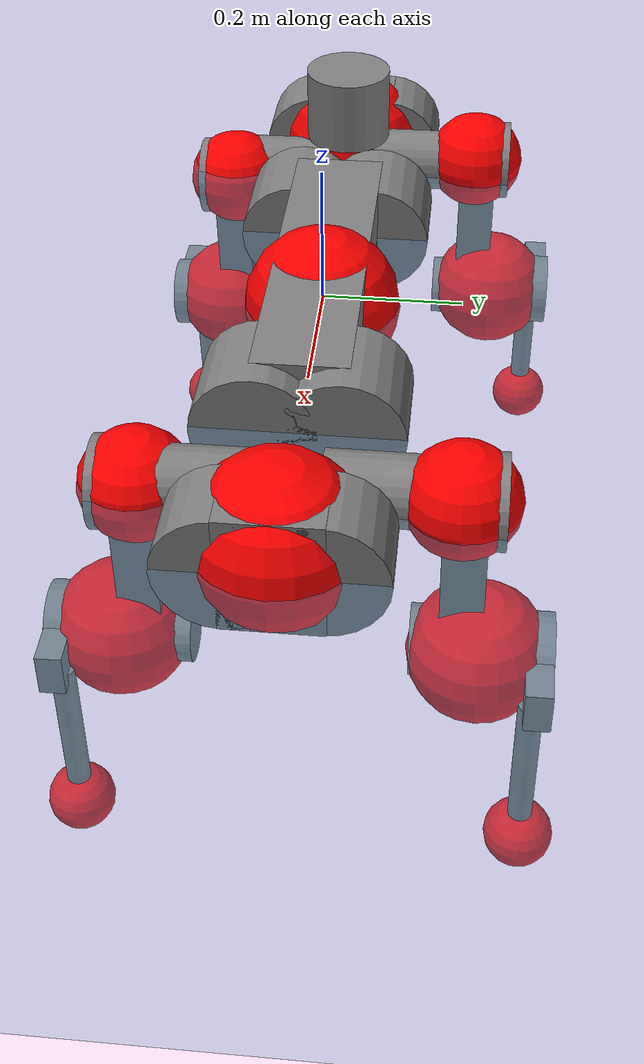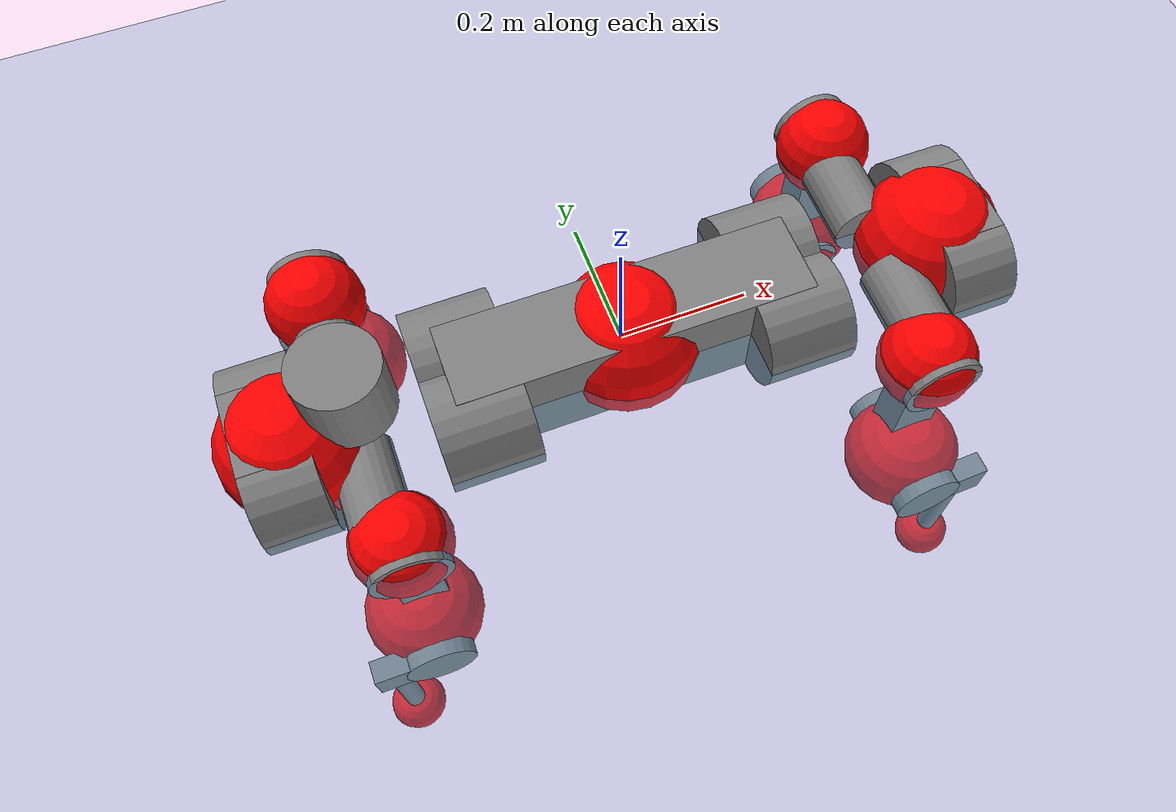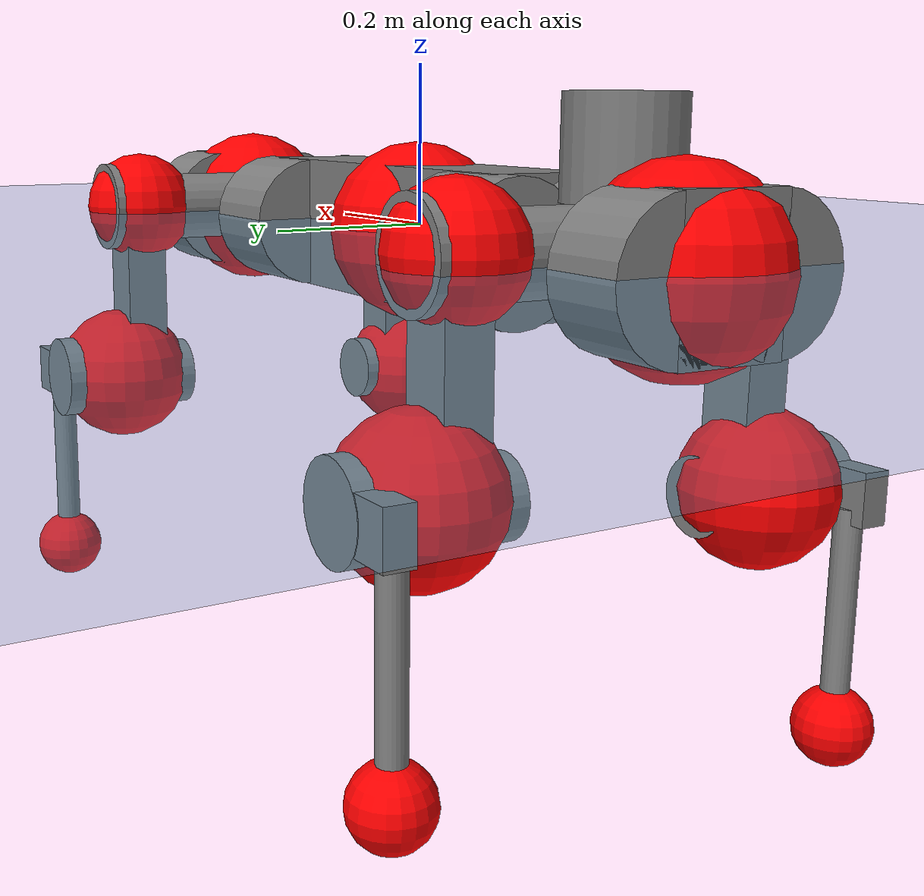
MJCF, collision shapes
<mujoco model="anymal_c">
  <compiler angle="radian" assetdir="assets" balanceinertia="true" inertiafromgeom="false"/>

  <option timestep="0.005" density="1.2" viscosity="2e-05"/>

  <size nkey="1"/>

  <visual>
    <quality shadowsize="8192"/>
    <map shadowclip="0.5"/>
  </visual>

  <default>
    <default class="/">
      <material specular="0" shininess="0.25"/>
      <geom contype="0" conaffinity="0" group="1" solref="-1000 -80"/>
      <site size="0.01 0.005 0.005" group="5"/>
      <general forcelimited="true" forcerange="-80 80" biastype="affine" gainprm="80" biasprm="0 -80 -2"/>
      <default class="anymal_c">
        <joint armature="0.01" damping="0.01" frictionloss="0.1"/>
        <default class="visual">
          <geom type="mesh" group="2"/>
          <default class="visual_zflip"/>
        </default>
        <default class="collision">
          <geom type="cylinder" group="3"/>
          <default class="foot">
            <geom size="0.03 0 0" type="sphere" condim="6" priority="1" friction="0.8 0.02 0.01" solimp="0.015 1 0.03"/>
          </default>
        </default>
      </default>
      <default class="reward_collision_sphere">
        <geom group="5" rgba="1 0 0 1"/>
      </default>
    </default>
  </default>

  <asset>
    <texture type="skybox" colorspace="auto" name="//unnamed_texture_0" builtin="gradient" rgb1="0.95 0.95 0.95" rgb2="0.95 0.95 0.95" width="100" height="600"/>
    <texture type="2d" colorspace="auto" name="texplane" builtin="checker" rgb1="0.345 0.575 0.748" rgb2="0.345 0.575 0.748" markrgb="1 1 1" width="512" height="512"/>
    <texture type="2d" colorspace="linear" name="base" file="base.png"/>
    <texture type="2d" colorspace="linear" name="top_shell" file="top_shell.png"/>
    <texture type="2d" colorspace="linear" name="bottom_shell" file="bottom_shell.png"/>
    <texture type="2d" colorspace="linear" name="remote" file="remote.png"/>
    <texture type="2d" colorspace="linear" name="hatch" file="hatch.png"/>
    <texture type="2d" colorspace="linear" name="handle" file="handle.png"/>
    <texture type="2d" colorspace="linear" name="face" file="face.png"/>
    <texture type="2d" colorspace="linear" name="battery" file="battery.png"/>
    <texture type="2d" colorspace="linear" name="lidar_cage" file="lidar_cage.png"/>
    <texture type="2d" colorspace="linear" name="depth_camera" file="depth_camera.png"/>
    <texture type="2d" colorspace="linear" name="wide_angle_camera" file="wide_angle_camera.png"/>
    <texture type="2d" colorspace="linear" name="lidar" file="lidar.png"/>
    <texture type="2d" colorspace="linear" name="drive" file="drive.png"/>
    <texture type="2d" colorspace="linear" name="hip_l" file="hip_l.png"/>
    <texture type="2d" colorspace="linear" name="shank_l" file="shank_l.png"/>
    <texture type="2d" colorspace="linear" name="foot" file="foot.png"/>
    <texture type="2d" colorspace="linear" name="thigh" file="thigh.png"/>
    <texture type="2d" colorspace="linear" name="shank_r" file="shank_r.png"/>
    <texture type="2d" colorspace="linear" name="hip_r" file="hip_r.png"/>
    <material name="MatPlane" class="/" texture="texplane" texuniform="true" texrepeat="2 2" specular="0.9" shininess="0.5"/>
    <material name="black_plastic" class="/" rgba="0.007 0.007 0.007 1"/>
    <material name="green" class="/" rgba="0.052 0.178 0.033 1"/>
    <material name="red" class="/" rgba="0.178 0.006 0.005 1"/>
    <material name="yellow" class="/" rgba="0.178 0.119 0.006 1"/>
    <material name="lwl" class="/" rgba="0.8 0.8 0.8 1"/>
    <material name="base" class="/" texture="base"/>
    <material name="top_shell" class="/" texture="top_shell"/>
    <material name="bottom_shell" class="/" texture="bottom_shell"/>
    <material name="hip_l" class="/" texture="hip_l"/>
    <material name="thigh" class="/" texture="thigh"/>
    <material name="shank_l" class="/" texture="shank_l"/>
    <material name="foot" class="/" texture="foot"/>
    <material name="hip_r" class="/" texture="hip_r"/>
    <material name="shank" class="/" texture="shank_r"/>
    <material name="hatch" class="/" texture="hatch"/>
    <material name="remote" class="/" texture="remote"/>
    <material name="handle" class="/" texture="handle"/>
    <material name="face" class="/" texture="face"/>
    <material name="depth_camera" class="/" texture="depth_camera"/>
    <material name="wide_angle_camera" class="/" texture="wide_angle_camera"/>
    <material name="battery" class="/" texture="battery"/>
    <material name="lidar_cage" class="/" texture="lidar_cage"/>
    <material name="lidar" class="/" texture="lidar"/>
    <material name="drive" class="/" texture="drive"/>
    <mesh name="base_0" class="/" file="base_0.obj"/>
    <mesh name="base_1" class="/" file="base_1.obj"/>
    <mesh name="base_2" class="/" file="base_2.obj"/>
    <mesh name="base_3" class="/" file="base_3.obj"/>
    <mesh name="base_4" class="/" file="base_4.obj"/>
    <mesh name="base_5" class="/" file="base_5.obj"/>
    <mesh name="top_shell" class="/" file="top_shell.obj"/>
    <mesh name="bottom_shell" class="/" file="bottom_shell.obj"/>
    <mesh name="remote" class="/" file="remote.obj"/>
    <mesh name="handle" class="/" file="handle.obj"/>
    <mesh name="face" class="/" file="face.obj"/>
    <mesh name="wide_angle_camera" class="/" file="wide_angle_camera.obj"/>
    <mesh name="depth_camera" class="/" file="depth_camera.obj"/>
    <mesh name="battery" class="/" file="battery.obj"/>
    <mesh name="lidar_cage" class="/" file="lidar_cage.obj"/>
    <mesh name="lidar" class="/" file="lidar.obj"/>
    <mesh name="drive" class="/" file="drive.obj"/>
    <mesh name="hip_l" class="/" file="hip_l.obj"/>
    <mesh name="thigh" class="/" file="thigh.obj"/>
    <mesh name="shank_l" class="/" file="shank_l.obj"/>
    <mesh name="foot" class="/" file="foot.obj"/>
    <mesh name="hip_r" class="/" file="hip_r.obj"/>
    <mesh name="hatch" class="/" file="hatch.obj"/>
    <mesh name="shank_r" class="/" file="shank_r.obj"/>
  </asset>

  <worldbody>
    <geom name="floor" class="/" size="100 100 0.125" type="plane" group="0" material="MatPlane"/>
    <light name="toplight_shadow" class="/" pos="0 0 5" dir="0.0990148 0.0990148 -0.990148" type="directional" ambient="0.04 0.04 0.04" diffuse="0.55 0.55 0.55" specular="0.12 0.12 0.12"/>
    <light name="toplight_fill" class="/" pos="0 0 5" dir="0.0990148 0.0990148 -0.990148" type="directional" castshadow="false" ambient="0.04 0.04 0.04" diffuse="0.3 0.3 0.3" specular="0.08 0.08 0.08"/>
    <body name="trunk" childclass="anymal_c" pos="0.00630554 -0.000121343 -0.00761988" quat="0.99999 0.00352218 -0.000854313 -0.00257742">
      <inertial pos="0.0203008 0.0143713 0.0523715" quat="0.479269 0.495888 0.505382 0.518638" mass="12.2207" diaginertia="1.07337 0.238185 0.0972836"/>
      <joint name="//unnamed_joint_0" type="free" armature="0" damping="0" frictionloss="0"/>
      <geom name="//unnamed_geom_1" class="visual" material="green" mesh="base_0"/>
      <geom name="//unnamed_geom_2" class="visual" material="yellow" mesh="base_1"/>
      <geom name="//unnamed_geom_3" class="visual" material="red" mesh="base_2"/>
      <geom name="//unnamed_geom_4" class="visual" material="black_plastic" mesh="base_3"/>
      <geom name="//unnamed_geom_5" class="visual" material="lwl" mesh="base_4"/>
      <geom name="//unnamed_geom_6" class="visual" material="base" mesh="base_5"/>
      <geom name="trunk_1" class="collision" size="0.272304 0.0657285 0.0845081" type="box"/>
      <geom name="trunk_2" class="collision" size="0.0845081 0.0680759" pos="0.243388 0.0579685 0" quat="0.707107 0 0.707107 0"/>
      <geom name="trunk_3" class="collision" size="0.0845081 0.0680759" pos="-0.243388 0.0579685 0" quat="0.707107 0 0.707107 0"/>
      <geom name="trunk_4" class="collision" size="0.0845081 0.0680759" pos="0.243388 -0.0579685 0" quat="0.707107 0 0.707107 0"/>
      <geom name="trunk_5" class="collision" size="0.0845081 0.0680759" pos="-0.243388 -0.0579685 0" quat="0.707107 0 0.707107 0"/>
      <geom name="//unnamed_geom_12" class="visual" material="top_shell" mesh="top_shell"/>
      <geom name="//unnamed_geom_13" class="visual" material="bottom_shell" mesh="bottom_shell"/>
      <geom name="//unnamed_geom_14" class="visual" material="remote" mesh="remote"/>
      <geom name="//unnamed_geom_15" class="visual" material="handle" mesh="handle"/>
      <geom name="//unnamed_geom_16" class="visual" pos="0.463837 0 0" quat="1 0 0 0" material="face" mesh="face"/>
      <geom name="trunk_6" class="collision" size="0.0516438 0.0657285 0.0845081" pos="0.525383 0 0" type="box"/>
      <geom name="//unnamed_geom_18" class="collision" size="0.0845081 0.0516438" pos="0.525383 0.0579685 0" quat="0.707107 0 0.707107 0"/>
      <geom name="//unnamed_geom_19" class="collision" size="0.0845081 0.0516438" pos="0.525383 -0.0579685 0" quat="0.707107 0 0.707107 0"/>
      <geom name="//unnamed_geom_20" class="visual" pos="0.516589 0 -0.0235035" quat="0.965926 0 0.258819 0" material="depth_camera" mesh="depth_camera"/>
      <geom name="//unnamed_geom_21" class="visual" pos="0.574061 0 0.0130207" material="wide_angle_camera" mesh="wide_angle_camera"/>
      <geom name="//unnamed_geom_22" class="visual_zflip" pos="-0.463837 0 0" quat="0 0 0 1" material="face" mesh="face"/>
      <geom name="trunk_7" class="collision" size="0.0516438 0.0657285 0.0845081" pos="-0.525383 0 0" quat="0 0 0 1" type="box"/>
      <geom name="//unnamed_geom_24" class="collision" size="0.0845081 0.0516438" pos="-0.525383 -0.0579685 0" quat="0 -0.707107 0 0.707107"/>
      <geom name="//unnamed_geom_25" class="collision" size="0.0845081 0.0516438" pos="-0.525383 0.0579685 0" quat="0 -0.707107 0 0.707107"/>
      <geom name="//unnamed_geom_26" class="visual" pos="-0.516589 0 -0.0235035" quat="0 -0.258819 0 0.965926" material="depth_camera" mesh="depth_camera"/>
      <geom name="//unnamed_geom_27" class="visual_zflip" pos="-0.574061 0 0.0130207" quat="0 0 0 1" material="wide_angle_camera" mesh="wide_angle_camera"/>
      <geom name="//unnamed_geom_28" class="visual" material="battery" mesh="battery"/>
      <geom name="//unnamed_geom_29" class="visual" pos="0 0.0594905 0.0271615" quat="0.683013 -0.183013 0.183013 0.683013" material="depth_camera" mesh="depth_camera"/>
      <geom name="//unnamed_geom_30" class="visual" pos="0 -0.0594905 0.0271615" quat="0.683013 0.183013 0.183013 -0.683013" material="depth_camera" mesh="depth_camera"/>
      <geom name="//unnamed_geom_31" class="visual" pos="-0.407326 0 0.0639293" quat="1 0 0 0" material="lidar_cage" mesh="lidar_cage"/>
      <geom name="trunk_8" class="collision" size="0.0657285 0.0563387" pos="-0.407326 0 0.116117"/>
      <geom name="//unnamed_geom_33" class="visual" pos="-0.407326 -0.000114289 0.123684" quat="0.707107 0 0 -0.707107" material="lidar" mesh="lidar"/>
      <geom name="//unnamed_geom_34" class="visual" pos="0.335596 0.0861394 -7.18725e-10" quat="0.258819 0.965926 0 0" material="drive" mesh="drive"/>
      <geom name="//unnamed_geom_35" class="visual" pos="0.335596 -0.0861394 7.18725e-10" quat="0.258819 -0.965926 0 0" material="drive" mesh="drive"/>
      <geom name="//unnamed_geom_36" class="visual" pos="-0.335596 0.0861394 7.18725e-10" quat="0 0 0.965926 -0.258819" material="drive" mesh="drive"/>
      <geom name="//unnamed_geom_37" class="visual" pos="-0.335596 -0.0861394 -7.18725e-10" quat="0 0 -0.965926 -0.258819" material="drive" mesh="drive"/>
      <geom name="//unnamed_geom_38" class="visual" pos="0.129807 0 0.0634944" quat="1 0 0 0" material="hatch" mesh="hatch"/>
      <geom name="//unnamed_geom_39" class="reward_collision_sphere" size="0.112677"/>
      <geom name="//unnamed_geom_40" class="reward_collision_sphere" size="0.112677" pos="0.503562 0 0"/>
      <geom name="//unnamed_geom_41" class="reward_collision_sphere" size="0.112677" pos="-0.503562 0 0"/>
      <site name="imu" pos="0.200684 0.00367772 0.117703" size="0.00938978"/>
      <camera name="track" pos="0 -1.65624 0" quat="0.707107 0.707107 0 0" mode="trackcom"/>
      <camera name="ego_camera" pos="0.503562 0 -0.0347915" quat="-0.5 -0.5 0.5 0.5"/>
      <body name="LF_HIP" pos="0.348483 0.0995383 0.00936436" quat="0.260433 0.965491 -0.00128267 -0.000100464">
        <inertial pos="0.0629529 9.17531e-05 -0.00397031" quat="-0.129446 0.709247 -0.135186 0.67966" mass="2.46553" diaginertia="0.012322 0.00272813 0.00199863"/>
        <joint name="LF_HAA" pos="0 0 0" axis="0.999944 0.00903535 0.0055157" stiffness="0.0575139" range="-0.728386 0.318817" armature="0.00838642" damping="0" frictionloss="0.148192"/>
        <geom name="//unnamed_geom_42" class="visual" pos="0 -4.22794e-05 6.94435e-06" quat="0.258819 -0.965926 0 0" material="hip_l" mesh="hip_l"/>
        <geom name="//unnamed_geom_43" class="visual" pos="0.0670297 -0.0774054 -0.0449982" quat="0.183013 -0.683013 0.683013 0.183013" material="drive" mesh="drive"/>
        <geom name="//unnamed_geom_44" class="collision" size="0.0469489 0.0657285" pos="0.0670297 -0.00990417 -0.00600588" quat="-0.353553 -0.612372 0.612372 -0.353553"/>
        <body name="LF_THIGH" pos="0.0773076 -0.076439 -0.0456914" quat="0.189867 -0.680682 0.683894 0.181415">
          <inertial pos="0.032371 -0.000484471 -0.223763" quat="0.98404 -0.0285578 -0.130406 0.117663" mass="3.04506" diaginertia="0.0550657 0.0146759 0.00198073"/>
          <joint name="LF_HFE" pos="0 0 0" axis="0.999555 0.023628 0.0182235" stiffness="0.0223309" range="-3.42999 2.91096" armature="0.0121897" damping="0" frictionloss="0.142408"/>
          <geom name="//unnamed_geom_45" class="visual" pos="0.00578788 9.12034e-06 0" quat="0.707107 0 0 -0.707107" material="thigh" mesh="thigh"/>
          <geom name="//unnamed_geom_46" class="collision" size="0.0610336 0.0375591" pos="0.0447611 0 0" quat="0.5 0.5 -0.5 -0.5"/>
          <geom name="//unnamed_geom_47" class="collision" size="0.0352117 0.0281694 0.132691" pos="0.0335708 0 -0.122913" quat="0.707107 0 0 -0.707107" type="box"/>
          <geom name="//unnamed_geom_48" class="visual" pos="0.112238 0 -0.247889" quat="1 0 0 0" material="drive" mesh="drive"/>
          <geom name="//unnamed_geom_49" class="collision" size="0.0469489 0.0657285" pos="0.0339065 0 -0.247889" quat="0.707107 0 0.707107 0"/>
          <geom name="//unnamed_geom_50" class="reward_collision_sphere" size="0.0751183" pos="0.0279757 0 0"/>
          <body name="LF_SHANK" pos="0.113057 -0.0148595 -0.246268" quat="0.999996 -0.00217413 0.0013816 -0.00142792">
            <inertial pos="0.00706218 -0.0561861 -0.0608973" quat="0.992536 -0.120179 -0.00449081 -0.0202531" mass="0.512699" diaginertia="0.0222109 0.00365309 0.000550995"/>
            <joint name="LF_KFE" pos="0 0 0" axis="0.999844 -0.00116503 -0.0176471" stiffness="0.0706864" range="-3.36775 3.11458" armature="0.00624905" damping="0" frictionloss="0.0877305"/>
            <geom name="//unnamed_geom_51" class="visual" pos="0.0018873 0.0100632 0" quat="0.707107 0 0 -0.707107" material="shank_l" mesh="shank_l"/>
            <geom name="LF_kfe_act" class="collision" size="0.0563387 0.0187796" pos="0.0223805 0 0" quat="0.5 0.5 -0.5 -0.5"/>
            <geom name="//unnamed_geom_53" class="collision" size="0.0539903 0.0316905 0.0178406" pos="0.0223805 -0.0476162 0" quat="0.5 0.5 -0.5 -0.5" type="box"/>
            <geom name="//unnamed_geom_54" class="visual" pos="0.0146028 -0.0695903 -0.293962" quat="0.382683 0 0 -0.92388" material="foot" mesh="foot"/>
            <geom name="LF_calf" class="collision" size="0.0164321 0.132633" pos="0.0146033 -0.0728333 -0.146981" quat="0.707107 0 0 -0.707107"/>
            <geom name="LF_foot" class="foot" size="0.0273519" pos="0.0146033 -0.0728333 -0.274392" quat="0.707107 0 0 -0.707107"/>
            <geom name="//unnamed_geom_57" class="reward_collision_sphere" size="0.0938978" pos="-0.0559514 0 0"/>
            <geom name="//unnamed_geom_58" class="reward_collision_sphere" size="0.0469489" pos="0.0146033 -0.0728333 -0.274392"/>
            <site name="LF_foot" class="foot" pos="0.0146033 -0.0728333 -0.274392" quat="0.707107 0 0 -0.707107" size="0.00938978"/>
          </body>
        </body>
      </body>
      <body name="RF_HIP" pos="0.351488 -0.0900111 0.00562051" quat="0.258683 -0.965962 8.01774e-05 -0.000145902">
        <inertial pos="0.0746233 0.0304189 0.00418458" quat="0.196688 0.640653 0.0958211 0.736" mass="2.24807" diaginertia="0.0112642 0.00145485 0.00178346"/>
        <joint name="RF_HAA" pos="0 0 0" axis="0.997783 0.0306148 -0.0590913" range="-0.585587 0.719182" armature="0.00815109" damping="0.0647971" frictionloss="0.0567738"/>
        <geom name="//unnamed_geom_59" class="visual" pos="0 4.2279e-05 6.94433e-06" quat="0.258819 0.965926 0 0" material="hip_r" mesh="hip_r"/>
        <geom name="//unnamed_geom_60" class="visual" pos="0.0670297 0.0774054 -0.0449982" quat="0.183013 0.683013 0.683013 -0.183013" material="drive" mesh="drive"/>
        <geom name="//unnamed_geom_61" class="collision" size="0.0469489 0.0657285" pos="0.0670297 0.00990417 -0.00600588" quat="-0.353553 0.612372 0.612372 0.353553"/>
        <body name="RF_THIGH" pos="0.0571023 0.0699685 -0.0225883" quat="0.181345 0.687975 0.678467 -0.182996">
          <inertial pos="0.018851 0.00701611 -0.203373" quat="0.987687 0.021206 -0.126411 0.0896891" mass="2.26401" diaginertia="0.0643879 0.0145372 0.00178563"/>
          <joint name="RF_HFE" pos="0 0 0" axis="0.999977 0.00658048 -0.00182239" stiffness="0.0049301" range="-3.29222 3.24633" armature="0.0141402" damping="0.0132393" frictionloss="0.0537975"/>
          <geom name="//unnamed_geom_62" class="visual" pos="0.00578788 9.12034e-06 0" quat="0.707107 0 0 -0.707107" material="thigh" mesh="thigh"/>
          <geom name="//unnamed_geom_63" class="collision" size="0.0610336 0.0375591" pos="0.0447611 0 0" quat="0.5 0.5 0.5 0.5"/>
          <geom name="//unnamed_geom_64" class="collision" size="0.0352117 0.0281694 0.132691" pos="0.0335708 0 -0.122913" quat="0.707107 0 0 0.707107" type="box"/>
          <geom name="//unnamed_geom_65" class="visual" pos="0.112238 0 -0.247889" quat="1 0 0 0" material="drive" mesh="drive"/>
          <geom name="//unnamed_geom_66" class="collision" size="0.0469489 0.0657285" pos="0.0339065 0 -0.247889" quat="0.707107 0 0.707107 0"/>
          <geom name="//unnamed_geom_67" class="reward_collision_sphere" size="0.0751183" pos="0.0279757 0 0"/>
          <body name="RF_SHANK" pos="0.12285 -0.000411066 -0.25197" quat="0.999987 0.000947091 -0.00124508 0.00493961">
            <inertial pos="0.019004 0.0511602 -0.0694023" quat="0.998535 0.0442055 0.031189 0.00105631" mass="0.353739" diaginertia="0.0133416 0.00334855 0.000462753"/>
            <joint name="RF_KFE" pos="0 0 0" axis="0.999946 -0.0103495 0.00067536" stiffness="0.0770253" range="-2.82306 3.35431" armature="0.00248884" damping="0" frictionloss="0.0519014"/>
            <geom name="//unnamed_geom_68" class="visual" pos="0.00188729 -0.0100632 0" quat="0.707107 0 0 0.707107" material="shank" mesh="shank_r"/>
            <geom name="RF_kfe_act" class="collision" size="0.0563387 0.0187796" pos="0.0223805 0 0" quat="0.5 0.5 0.5 0.5"/>
            <geom name="//unnamed_geom_70" class="collision" size="0.0539903 0.0316905 0.0178406" pos="0.0223805 0.0476162 0" quat="0.5 0.5 0.5 0.5" type="box"/>
            <geom name="//unnamed_geom_71" class="visual" pos="0.0146038 0.0695903 -0.293962" quat="0.382683 0 0 0.92388" material="foot" mesh="foot"/>
            <geom name="RF_calf" class="collision" size="0.0164321 0.132633" pos="0.0146033 0.0728333 -0.146981" quat="0.707107 0 0 0.707107"/>
            <geom name="RF_foot" class="foot" size="0.0417383" pos="0.0146033 0.0728333 -0.274392" quat="0.707107 0 0 0.707107"/>
            <geom name="//unnamed_geom_74" class="reward_collision_sphere" size="0.0938978" pos="-0.0559514 0 0"/>
            <geom name="//unnamed_geom_75" class="reward_collision_sphere" size="0.0469489" pos="0.0146033 0.0728333 -0.274392"/>
            <site name="RF_foot" class="foot" pos="0.0146033 0.0728333 -0.274392" quat="0.707107 0 0 0.707107" size="0.00938978"/>
          </body>
        </body>
      </body>
      <body name="LH_HIP" pos="-0.350248 0.0980463 0.0141555" quat="0.000652613 -0.000822378 0.966003 -0.258528">
        <inertial pos="0.0629474 0.000859827 0.00906264" quat="0.199667 0.663193 0.129915 0.709528" mass="1.84882" diaginertia="0.00640279 0.00164426 0.00147575"/>
        <joint name="LH_HAA" pos="0 0 0" axis="0.997788 0.00308604 0.066401" stiffness="0.0428324" range="-0.468294 0.566835" armature="0.0104096" damping="0.0828494" frictionloss="0.0950367"/>
        <geom name="//unnamed_geom_76" class="visual" pos="0 4.2279e-05 6.94433e-06" quat="-0.258819 -0.965926 0 0" material="hip_r" mesh="hip_r"/>
        <geom name="//unnamed_geom_77" class="visual" pos="0.0670297 0.0774054 -0.0449982" quat="0.183013 0.683013 0.683013 -0.183013" material="drive" mesh="drive"/>
        <geom name="//unnamed_geom_78" class="collision" size="0.0469489 0.0657285" pos="0.0670297 0.00990417 -0.00600588" quat="-0.353553 0.612372 0.612372 0.353553"/>
        <body name="LH_THIGH" pos="0.0673958 0.0686749 -0.0453367" quat="0.179775 0.682075 0.684998 -0.182299">
          <inertial pos="0.0519644 -0.00744683 -0.197408" quat="0.99264 -0.00100035 -0.0789978 0.0917835" mass="3.2305" diaginertia="0.0739834 0.0113858 0.00215845"/>
          <joint name="LH_HFE" pos="0 0 0" axis="1 0.000233734 -0.000508564" range="-2.94714 3.369" armature="0.00686229" damping="0.0711134" frictionloss="0.0931224"/>
          <geom name="//unnamed_geom_79" class="visual" pos="0.00578788 9.12034e-06 0" quat="0.707107 0 0 -0.707107" material="thigh" mesh="thigh"/>
          <geom name="//unnamed_geom_80" class="collision" size="0.0610336 0.0375591" pos="0.0447611 0 0" quat="0.5 0.5 -0.5 -0.5"/>
          <geom name="//unnamed_geom_81" class="collision" size="0.0352117 0.0281694 0.132691" pos="0.0335708 0 -0.122913" quat="0.707107 0 0 -0.707107" type="box"/>
          <geom name="//unnamed_geom_82" class="visual" pos="0.112238 0 -0.247889" quat="1 0 0 0" material="drive" mesh="drive"/>
          <geom name="//unnamed_geom_83" class="collision" size="0.0469489 0.0657285" pos="0.0339065 0 -0.247889" quat="0.707107 0 0.707107 0"/>
          <geom name="//unnamed_geom_84" class="reward_collision_sphere" size="0.0751183" pos="0.0279757 0 0"/>
          <body name="LH_SHANK" pos="0.12048 -0.00801404 -0.240722" quat="1 1.45697e-05 0.000434168 -0.000223599">
            <inertial pos="-0.0035623 0.0361124 -0.0628626" quat="0.994054 0.0833104 -0.00408656 0.0699887" mass="0.378295" diaginertia="0.015926 0.00230208 0.0003961"/>
            <joint name="LH_KFE" pos="0 0 0" axis="0.999886 -0.00441372 0.0144176" range="-3.42474 3.3772" armature="0.0020258" damping="0" frictionloss="0.158282"/>
            <geom name="//unnamed_geom_85" class="visual" pos="0.00188729 -0.0100632 0" quat="-0.707107 0 0 -0.707107" material="shank" mesh="shank_r"/>
            <geom name="LH_kfe_act" class="collision" size="0.0563387 0.0187796" pos="0.0223805 0 0" quat="0.5 0.5 -0.5 -0.5"/>
            <geom name="//unnamed_geom_87" class="collision" size="0.0539903 0.0316905 0.0178406" pos="0.0223805 0.0476162 0" quat="0.5 0.5 -0.5 -0.5" type="box"/>
            <geom name="//unnamed_geom_88" class="visual" pos="0.0146038 0.0695903 -0.293962" quat="-0.382683 0 0 -0.92388" material="foot" mesh="foot"/>
            <geom name="LH_calf" class="collision" size="0.0164321 0.132633" pos="0.0146033 0.0728333 -0.146981" quat="0.707107 0 0 -0.707107"/>
            <geom name="LH_foot" class="foot" size="0.0195408" pos="0.0146033 0.0728333 -0.274392" quat="0.707107 0 0 -0.707107"/>
            <geom name="//unnamed_geom_91" class="reward_collision_sphere" size="0.0938978" pos="-0.0559514 0 0"/>
            <geom name="//unnamed_geom_92" class="reward_collision_sphere" size="0.0469489" pos="0.0146033 0.0728333 -0.274392"/>
            <site name="LH_foot" class="foot" pos="0.0146033 0.0728333 -0.274392" quat="0.707107 0 0 -0.707107" size="0.00938978"/>
          </body>
        </body>
      </body>
      <body name="RH_HIP" pos="-0.353119 -0.0887457 -0.00847639" quat="2.06821e-05 -0.000733272 -0.965611 -0.259989">
        <inertial pos="0.074064 -0.0226794 0.00893482" quat="-0.0599918 0.753098 -0.121536 0.643796" mass="2.31621" diaginertia="0.012481 0.00228884 0.00198459"/>
        <joint name="RH_HAA" pos="0 0 0" axis="0.997074 0.0368085 -0.0669973" range="-0.423795 0.291876" armature="0.0136162" damping="0.0590274" frictionloss="0.0949278"/>
        <geom name="//unnamed_geom_93" class="visual" pos="0 -4.22794e-05 6.94435e-06" quat="-0.258819 0.965926 0 0" material="hip_l" mesh="hip_l"/>
        <geom name="//unnamed_geom_94" class="visual" pos="0.0670297 -0.0774054 -0.0449982" quat="-0.183013 0.683013 -0.683013 -0.183013" material="drive" mesh="drive"/>
        <geom name="//unnamed_geom_95" class="collision" size="0.0469489 0.0657285" pos="0.0670297 -0.00990417 -0.00600588" quat="0.353553 0.612372 -0.612372 0.353553"/>
        <body name="RH_THIGH" pos="0.0506447 -0.0677309 -0.0217037" quat="-0.179698 0.684888 -0.683538 -0.177237">
          <inertial pos="0.0324565 -0.0105298 -0.219686" quat="0.993134 -0.00504379 -0.0808229 0.0844227" mass="3.35235" diaginertia="0.0700646 0.0137962 0.00249534"/>
          <joint name="RH_HFE" pos="0 0 0" axis="0.999691 -0.0122219 0.0216503" stiffness="0.0176888" range="-3.35328 3.28119" armature="0.0116944" damping="0" frictionloss="0.0964679"/>
          <geom name="//unnamed_geom_96" class="visual" pos="0.00578788 9.12034e-06 0" quat="0.707107 0 0 -0.707107" material="thigh" mesh="thigh"/>
          <geom name="//unnamed_geom_97" class="collision" size="0.0610336 0.0375591" pos="0.0447611 0 0" quat="0.5 0.5 0.5 0.5"/>
          <geom name="//unnamed_geom_98" class="collision" size="0.0352117 0.0281694 0.132691" pos="0.0335708 0 -0.122913" quat="0.707107 0 0 0.707107" type="box"/>
          <geom name="//unnamed_geom_99" class="visual" pos="0.112238 0 -0.247889" quat="1 0 0 0" material="drive" mesh="drive"/>
          <geom name="//unnamed_geom_100" class="collision" size="0.0469489 0.0657285" pos="0.0339065 0 -0.247889" quat="0.707107 0 0.707107 0"/>
          <geom name="//unnamed_geom_101" class="reward_collision_sphere" size="0.0751183" pos="0.0279757 0 0"/>
          <body name="RH_SHANK" pos="0.106328 -0.0133455 -0.242603" quat="0.99997 -0.00730919 0.00263584 0.000366654">
            <inertial pos="-0.00737778 -0.0418483 -0.0767495" quat="0.99652 -0.0718766 0.0417201 -0.00648507" mass="0.459952" diaginertia="0.0203582 0.00354028 0.000622109"/>
            <joint name="RH_KFE" pos="0 0 0" axis="0.999828 -0.0162428 -0.00897921" range="-3.11675 2.83913" armature="0.0100067" damping="0" frictionloss="0.0522841"/>
            <geom name="//unnamed_geom_102" class="visual" pos="0.0018873 0.0100632 0" quat="0.707107 0 0 -0.707107" material="shank_l" mesh="shank_l"/>
            <geom name="RH_kfe_act" class="collision" size="0.0563387 0.0187796" pos="0.0223805 0 0" quat="0.5 0.5 0.5 0.5"/>
            <geom name="//unnamed_geom_104" class="collision" size="0.0539903 0.0316905 0.0178406" pos="0.0223805 -0.0476162 0" quat="0.5 0.5 0.5 0.5" type="box"/>
            <geom name="//unnamed_geom_105" class="visual" pos="0.0146028 -0.0695903 -0.293962" quat="0.382683 0 0 -0.92388" material="foot" mesh="foot"/>
            <geom name="RH_calf" class="collision" size="0.0164321 0.132633" pos="0.0146033 -0.0728333 -0.146981" quat="0.707107 0 0 0.707107"/>
            <geom name="RH_foot" class="foot" size="0.0405407" pos="0.0146033 -0.0728333 -0.274392" quat="0.707107 0 0 0.707107"/>
            <geom name="//unnamed_geom_108" class="reward_collision_sphere" size="0.0938978" pos="-0.0559514 0 0"/>
            <geom name="//unnamed_geom_109" class="reward_collision_sphere" size="0.0469489" pos="0.0146033 -0.0728333 -0.274392"/>
            <site name="RH_foot" class="foot" pos="0.0146033 -0.0728333 -0.274392" quat="0.707107 0 0 0.707107" size="0.00938978"/>
          </body>
        </body>
      </body>
    </body>
  </worldbody>

  <contact>
    <pair class="/" geom1="floor" geom2="LF_foot" name="//unnamed_contact_0"/>
    <pair class="/" geom1="floor" geom2="RF_foot" name="//unnamed_contact_1"/>
    <pair class="/" geom1="floor" geom2="LH_foot" name="//unnamed_contact_2"/>
    <pair class="/" geom1="floor" geom2="RH_foot" name="//unnamed_contact_3"/>
  </contact>

  <actuator>
    <general name="LF_HAA" class="/" joint="LF_HAA" forcerange="-111.779 111.779" gainprm="94.6055" biasprm="0 -94.6055 -2.35966"/>
    <general name="LF_HFE" class="/" joint="LF_HFE" forcerange="-120.49 120.49" gainprm="94.6055" biasprm="0 -94.6055 -2.35966"/>
    <general name="LF_KFE" class="/" joint="LF_KFE" forcerange="-96.1539 96.1539" gainprm="94.6055" biasprm="0 -94.6055 -2.35966"/>
    <general name="RF_HAA" class="/" joint="RF_HAA" forcerange="-70.3653 70.3653" gainprm="94.6055" biasprm="0 -94.6055 -2.35966"/>
    <general name="RF_HFE" class="/" joint="RF_HFE" forcerange="-41.178 41.178" gainprm="94.6055" biasprm="0 -94.6055 -2.35966"/>
    <general name="RF_KFE" class="/" joint="RF_KFE" forcerange="-90.1368 90.1368" gainprm="94.6055" biasprm="0 -94.6055 -2.35966"/>
    <general name="LH_HAA" class="/" joint="LH_HAA" forcerange="-77.8736 77.8736" gainprm="94.6055" biasprm="0 -94.6055 -2.35966"/>
    <general name="LH_HFE" class="/" joint="LH_HFE" forcerange="-110.188 110.188" gainprm="94.6055" biasprm="0 -94.6055 -2.35966"/>
    <general name="LH_KFE" class="/" joint="LH_KFE" forcerange="-53.2628 53.2628" gainprm="94.6055" biasprm="0 -94.6055 -2.35966"/>
    <general name="RH_HAA" class="/" joint="RH_HAA" forcerange="-87.1911 87.1911" gainprm="94.6055" biasprm="0 -94.6055 -2.35966"/>
    <general name="RH_HFE" class="/" joint="RH_HFE" forcerange="-34.9418 34.9418" gainprm="94.6055" biasprm="0 -94.6055 -2.35966"/>
    <general name="RH_KFE" class="/" joint="RH_KFE" forcerange="-59.2764 59.2764" gainprm="94.6055" biasprm="0 -94.6055 -2.35966"/>
  </actuator>

  <sensor>
    <gyro site="imu" name="imu_angular_velocity"/>
    <velocimeter site="imu" name="imu_linear_velocity"/>
    <framelinvel objtype="site" objname="LF_foot" name="LF_foot_global_linear_velocity"/>
    <framelinvel objtype="site" objname="RF_foot" name="RF_foot_global_linear_velocity"/>
    <framelinvel objtype="site" objname="LH_foot" name="LH_foot_global_linear_velocity"/>
    <framelinvel objtype="site" objname="RH_foot" name="RH_foot_global_linear_velocity"/>
  </sensor>

  <keyframe>
    <key name="home" qpos="0 0 0.55 1 0 0 0 0 0.4 -0.8 0 -0.4 0.8 0 -0.4 0.8 0 0.4 -0.8"/>
  </keyframe>
</mujoco>
